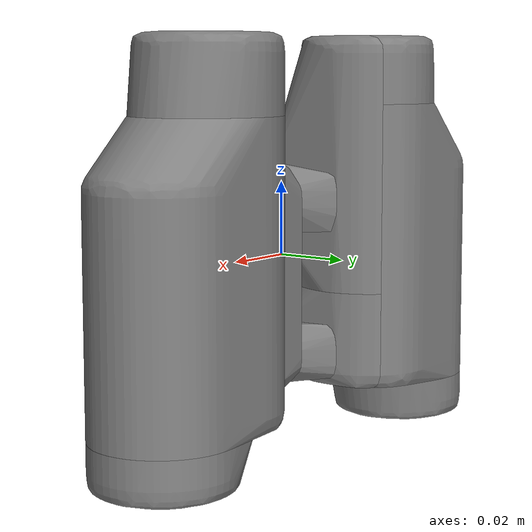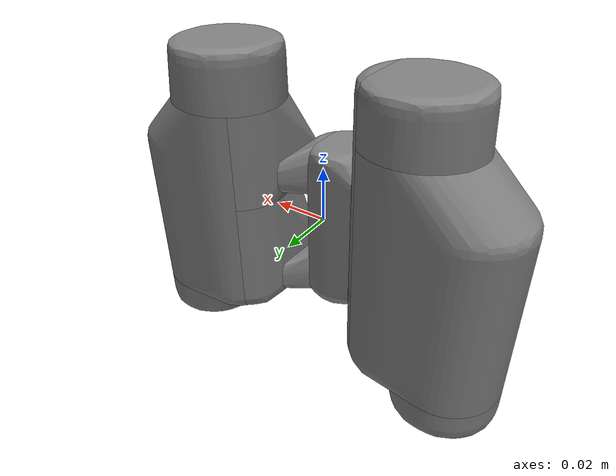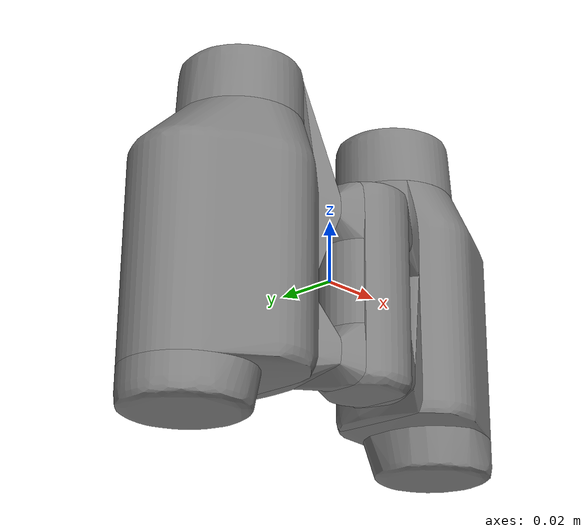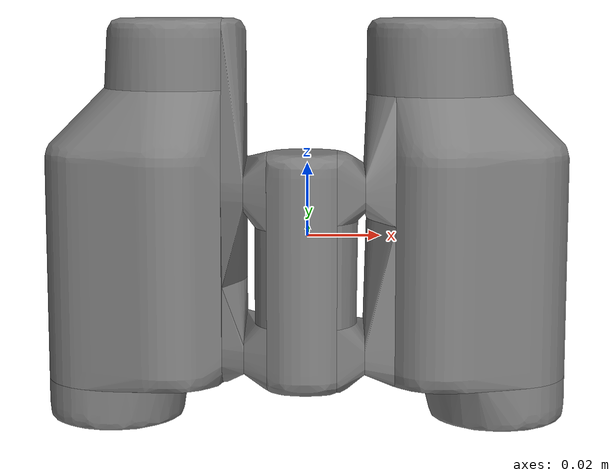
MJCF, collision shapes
<mujoco model="binoculars">
  <compiler meshdir="."/>

  <asset>
    <mesh name="binoculars" file="binoculars.stl"/>
    <mesh name="binoculars_collision_hull_000" file="binoculars_collision_hull_000.stl"/>
    <mesh name="binoculars_collision_hull_001" file="binoculars_collision_hull_001.stl"/>
    <mesh name="binoculars_collision_hull_002" file="binoculars_collision_hull_002.stl"/>
    <mesh name="binoculars_collision_hull_003" file="binoculars_collision_hull_003.stl"/>
    <mesh name="binoculars_collision_hull_004" file="binoculars_collision_hull_004.stl"/>
    <mesh name="binoculars_collision_hull_005" file="binoculars_collision_hull_005.stl"/>
    <mesh name="binoculars_collision_hull_006" file="binoculars_collision_hull_006.stl"/>
    <mesh name="binoculars_collision_hull_007" file="binoculars_collision_hull_007.stl"/>
    <mesh name="binoculars_collision_hull_008" file="binoculars_collision_hull_008.stl"/>
    <mesh name="binoculars_collision_hull_009" file="binoculars_collision_hull_009.stl"/>
    <mesh name="binoculars_collision_hull_010" file="binoculars_collision_hull_010.stl"/>
    <mesh name="binoculars_collision_hull_011" file="binoculars_collision_hull_011.stl"/>
    <mesh name="binoculars_collision_hull_012" file="binoculars_collision_hull_012.stl"/>
    <mesh name="binoculars_collision_hull_013" file="binoculars_collision_hull_013.stl"/>
    <mesh name="binoculars_collision_hull_014" file="binoculars_collision_hull_014.stl"/>
    <mesh name="binoculars_collision_hull_015" file="binoculars_collision_hull_015.stl"/>
    <mesh name="binoculars_collision_hull_016" file="binoculars_collision_hull_016.stl"/>
  </asset>

  <worldbody>
    <body name="object">
      <freejoint name="object_joint"/>
      <geom name="object_visual" type="mesh" mesh="binoculars"
            contype="0" conaffinity="0" group="2" rgba="0.9 0.9 0.8 1" mass="0"/>
      <geom name="binoculars_collision_hull_000_collision" type="mesh" mesh="binoculars_collision_hull_000"
            mass="0.0029" condim="6" friction="1.0 0.002 0.002" priority="1"/>
      <geom name="binoculars_collision_hull_001_collision" type="mesh" mesh="binoculars_collision_hull_001"
            mass="0.0029" condim="6" friction="1.0 0.002 0.002" priority="1"/>
      <geom name="binoculars_collision_hull_002_collision" type="mesh" mesh="binoculars_collision_hull_002"
            mass="0.0029" condim="6" friction="1.0 0.002 0.002" priority="1"/>
      <geom name="binoculars_collision_hull_003_collision" type="mesh" mesh="binoculars_collision_hull_003"
            mass="0.0029" condim="6" friction="1.0 0.002 0.002" priority="1"/>
      <geom name="binoculars_collision_hull_004_collision" type="mesh" mesh="binoculars_collision_hull_004"
            mass="0.0029" condim="6" friction="1.0 0.002 0.002" priority="1"/>
      <geom name="binoculars_collision_hull_005_collision" type="mesh" mesh="binoculars_collision_hull_005"
            mass="0.0029" condim="6" friction="1.0 0.002 0.002" priority="1"/>
      <geom name="binoculars_collision_hull_006_collision" type="mesh" mesh="binoculars_collision_hull_006"
            mass="0.0029" condim="6" friction="1.0 0.002 0.002" priority="1"/>
      <geom name="binoculars_collision_hull_007_collision" type="mesh" mesh="binoculars_collision_hull_007"
            mass="0.0029" condim="6" friction="1.0 0.002 0.002" priority="1"/>
      <geom name="binoculars_collision_hull_008_collision" type="mesh" mesh="binoculars_collision_hull_008"
            mass="0.0029" condim="6" friction="1.0 0.002 0.002" priority="1"/>
      <geom name="binoculars_collision_hull_009_collision" type="mesh" mesh="binoculars_collision_hull_009"
            mass="0.0029" condim="6" friction="1.0 0.002 0.002" priority="1"/>
      <geom name="binoculars_collision_hull_010_collision" type="mesh" mesh="binoculars_collision_hull_010"
            mass="0.0029" condim="6" friction="1.0 0.002 0.002" priority="1"/>
      <geom name="binoculars_collision_hull_011_collision" type="mesh" mesh="binoculars_collision_hull_011"
            mass="0.0029" condim="6" friction="1.0 0.002 0.002" priority="1"/>
      <geom name="binoculars_collision_hull_012_collision" type="mesh" mesh="binoculars_collision_hull_012"
            mass="0.0029" condim="6" friction="1.0 0.002 0.002" priority="1"/>
      <geom name="binoculars_collision_hull_013_collision" type="mesh" mesh="binoculars_collision_hull_013"
            mass="0.0029" condim="6" friction="1.0 0.002 0.002" priority="1"/>
      <geom name="binoculars_collision_hull_014_collision" type="mesh" mesh="binoculars_collision_hull_014"
            mass="0.0029" condim="6" friction="1.0 0.002 0.002" priority="1"/>
      <geom name="binoculars_collision_hull_015_collision" type="mesh" mesh="binoculars_collision_hull_015"
            mass="0.0029" condim="6" friction="1.0 0.002 0.002" priority="1"/>
      <geom name="binoculars_collision_hull_016_collision" type="mesh" mesh="binoculars_collision_hull_016"
            mass="0.0029" condim="6" friction="1.0 0.002 0.002" priority="1"/>
    </body>
  </worldbody>
</mujoco>
